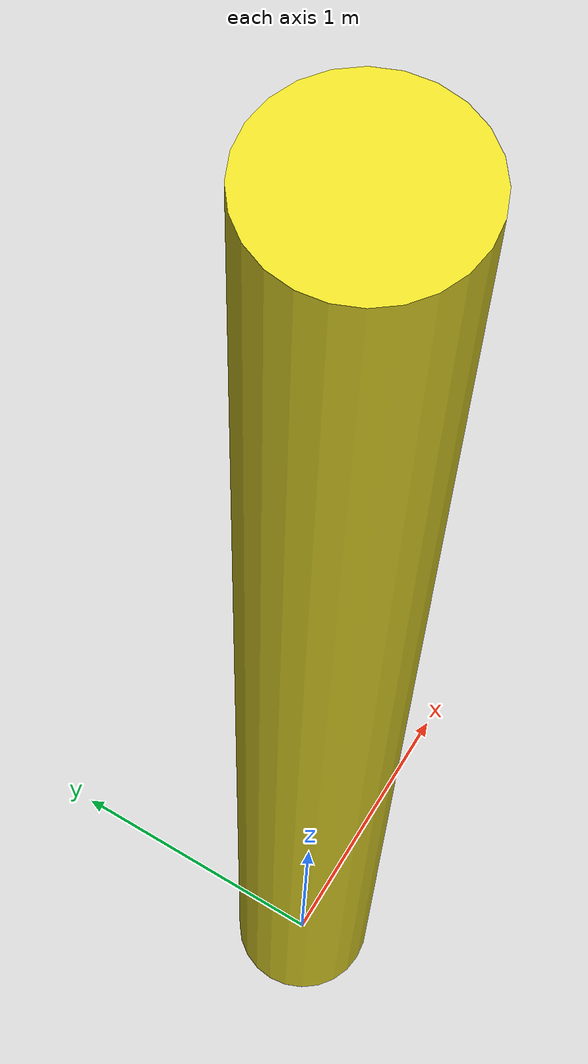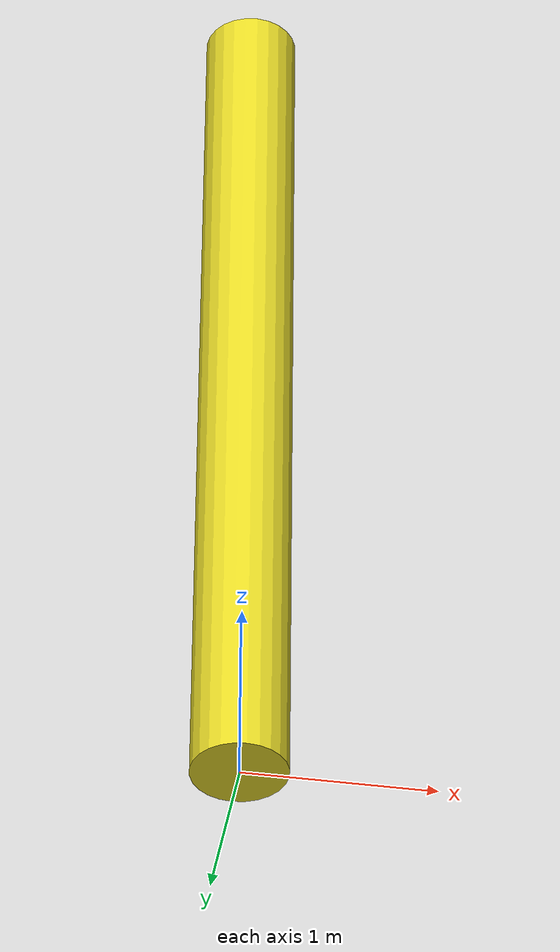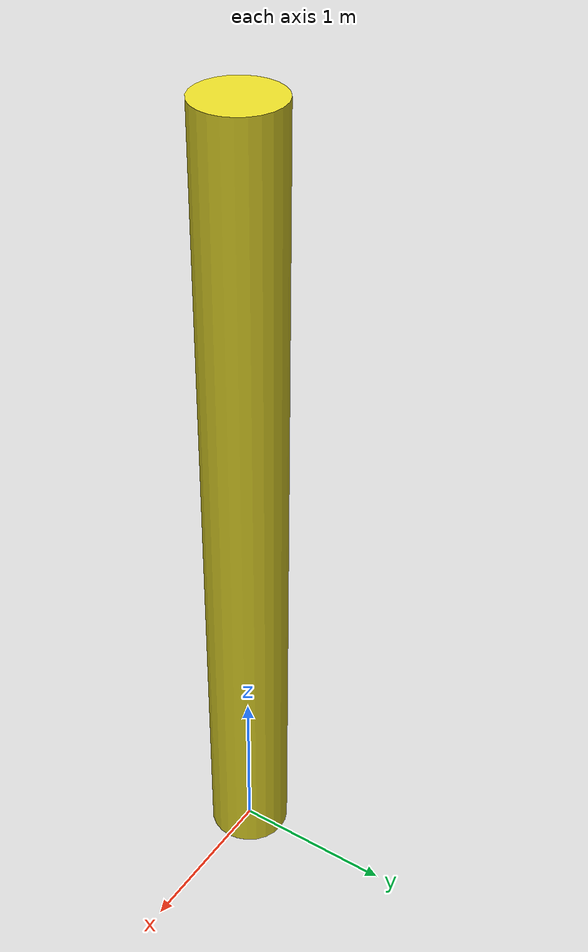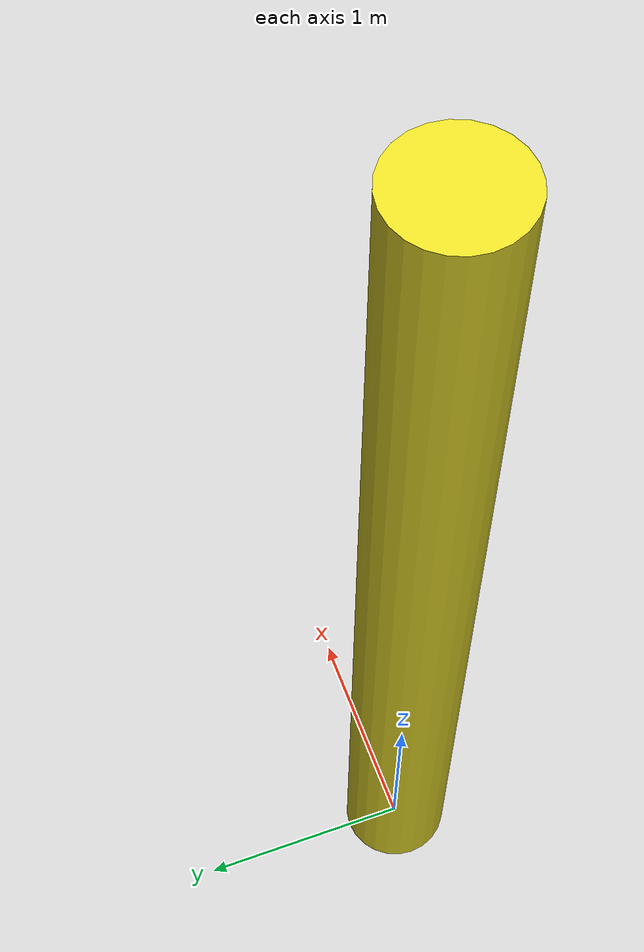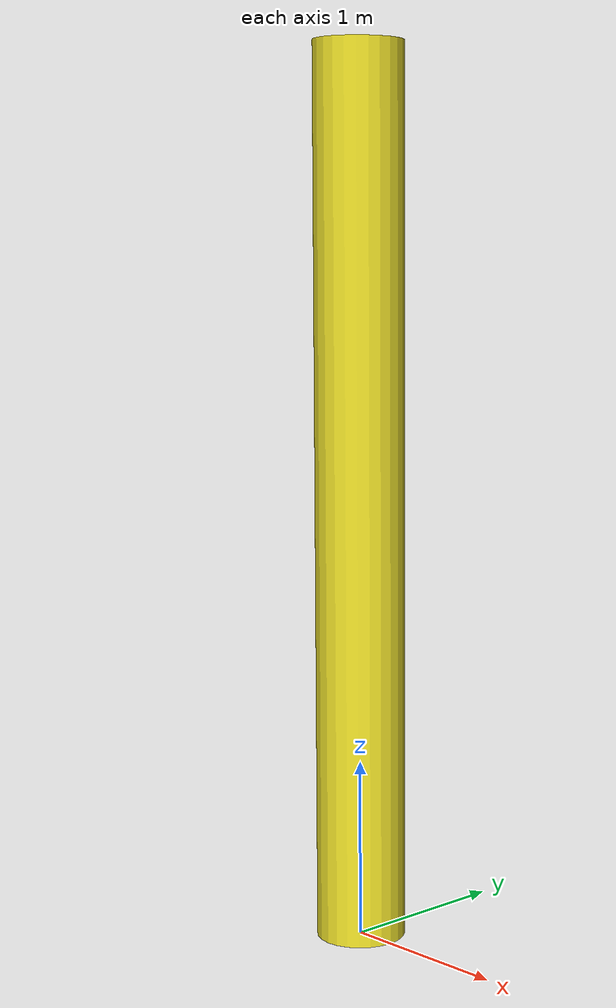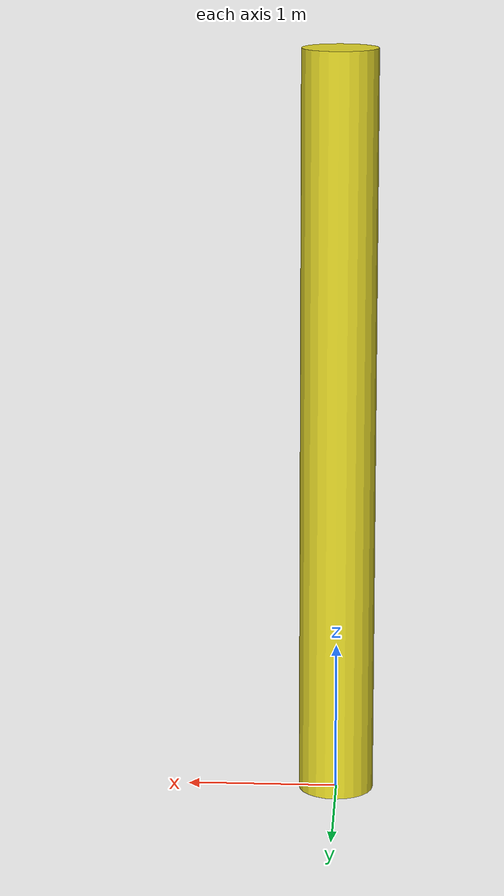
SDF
<?xml version='1.0'?>
<sdf version='1.6'>
  <model name='obs_cylinder_large'>
    <link name='link'>
      <inertial>
        <mass>1</mass>
        <pose frame=''>0 0 0 0 -0 0</pose>
      </inertial>
      <self_collide>0</self_collide>
      <enable_wind>0</enable_wind>
      <kinematic>0</kinematic>
      <pose frame=''>0 0 0 0 -0 0</pose>
      <gravity>1</gravity>
      <visual name='visual'>
        <geometry>
          <cylinder>
            <radius>0.25</radius>
            <length>5.0</length>
          </cylinder>
        </geometry>
        <material>
          <script>
            <name>Gazebo/Yellow</name>
            <uri>file://media/materials/scripts/gazebo.material</uri>
          </script>
        </material>
        <pose frame=''>0 0 2.5 0 -0 0</pose>
        <transparency>0</transparency>
        <cast_shadows>1</cast_shadows>
      </visual>
      <collision name='collision'>
        <laser_retro>0</laser_retro>
        <max_contacts>10</max_contacts>
        <pose frame=''>0 0 2.5 0 -0 0</pose>
        <geometry>
          <cylinder>
            <radius>0.25</radius>
            <length>5.0</length>
          </cylinder>
        </geometry>
      </collision>
    </link>
    <static>1</static>
    <allow_auto_disable>1</allow_auto_disable>
  </model>
</sdf>
